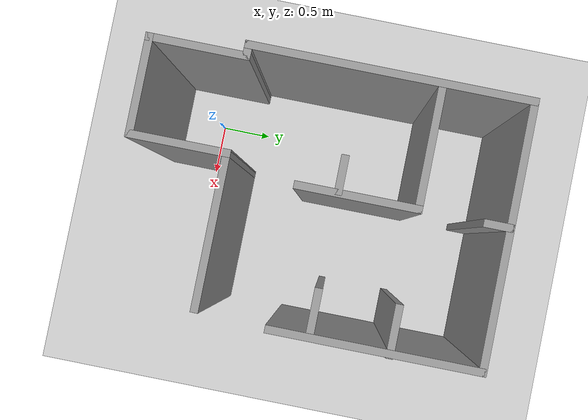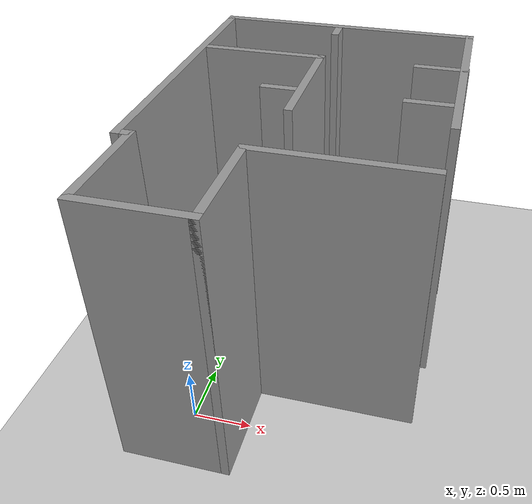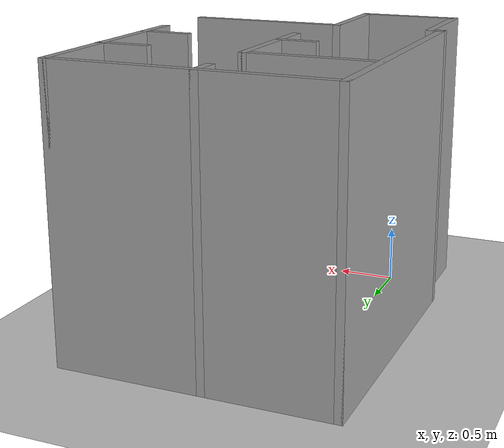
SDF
<sdf version="1.4">
  <world name="default">

    <scene>
      <ambient>0.4 0.4 0.4 1</ambient>
      <background>0.7 0.7 0.7 1</background>
      <shadows>true</shadows>
    </scene>

    <!-- A global light source -->
    <include>
      <uri>model://sun</uri>
    </include>

    <!-- A ground plane -->
    <include>
      <uri>model://ground_plane</uri>
    </include>

    <!-- The enclosed maze -->
    <include>
      <uri>model://Enclosed</uri>
    </include>

    <physics type="ode">
      <real_time_update_rate>1000.0</real_time_update_rate>
      <max_step_size>0.001</max_step_size>
      <real_time_factor>1</real_time_factor>
      <ode>
        <solver>
          <type>quick</type>
          <iters>150</iters>
          <precon_iters>0</precon_iters>
          <sor>1.400000</sor>
          <use_dynamic_moi_rescaling>1</use_dynamic_moi_rescaling>
        </solver>
        <constraints>
          <cfm>0.00001</cfm>
          <erp>0.2</erp>
          <contact_max_correcting_vel>2000.000000</contact_max_correcting_vel>
          <contact_surface_layer>0.01000</contact_surface_layer>
        </constraints>
      </ode>
    </physics>
  </world>

</sdf>

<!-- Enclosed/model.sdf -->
<sdf version='1.6'>
  <model name='Enclosed'>
    <pose frame=''>0.6785 1.225 0 0 -0 0</pose>
    <link name='Wall_0'>
      <collision name='Wall_0_Collision'>
        <geometry>
          <box>
            <size>2.57 0.07 2.5</size>
          </box>
        </geometry>
        <pose frame=''>0 0 1.25 0 -0 0</pose>
      </collision>
      <visual name='Wall_0_Visual'>
        <pose frame=''>0 0 1.25 0 -0 0</pose>
        <geometry>
          <box>
            <size>2.57 0.07 2.5</size>
          </box>
        </geometry>
        <material>
          <script>
            <uri>file://media/materials/scripts/gazebo.material</uri>
            <name>Gazebo/Grey</name>
          </script>
          <ambient>1 1 1 1</ambient>
        </material>
        <meta>
          <layer>0</layer>
        </meta>
      </visual>
      <pose frame=''>-1.1785 0.425 0 0 -0 1.5708</pose>
    </link>
    <link name='Wall_11'>
      <collision name='Wall_11_Collision'>
        <geometry>
          <box>
            <size>2.42 0.07 2.5</size>
          </box>
        </geometry>
        <pose frame=''>0 0 1.25 0 -0 0</pose>
      </collision>
      <visual name='Wall_11_Visual'>
        <pose frame=''>0 0 1.25 0 -0 0</pose>
        <geometry>
          <box>
            <size>2.42 0.07 2.5</size>
          </box>
        </geometry>
        <material>
          <script>
            <uri>file://media/materials/scripts/gazebo.material</uri>
            <name>Gazebo/Grey</name>
          </script>
          <ambient>1 1 1 1</ambient>
        </material>
        <meta>
          <layer>0</layer>
        </meta>
      </visual>
      <pose frame=''>-0.0035 1.675 0 0 -0 0</pose>
    </link>
    <link name='Wall_12'>
      <collision name='Wall_12_Collision'>
        <geometry>
          <box>
            <size>1.92 0.07 2.5</size>
          </box>
        </geometry>
        <pose frame=''>0 0 1.25 0 -0 0</pose>
      </collision>
      <visual name='Wall_12_Visual'>
        <pose frame=''>0 0 1.25 0 -0 0</pose>
        <geometry>
          <box>
            <size>1.92 0.07 2.5</size>
          </box>
        </geometry>
        <material>
          <script>
            <uri>file://media/materials/scripts/gazebo.material</uri>
            <name>Gazebo/Grey</name>
          </script>
          <ambient>1 1 1 1</ambient>
        </material>
        <meta>
          <layer>0</layer>
        </meta>
      </visual>
      <pose frame=''>1.1715 0.75 0 0 -0 -1.5708</pose>
    </link>
    <link name='Wall_14'>
      <collision name='Wall_14_Collision'>
        <geometry>
          <box>
            <size>1.159 0.07 2.5</size>
          </box>
        </geometry>
        <pose frame=''>0 0 1.25 0 -0 0</pose>
      </collision>
      <visual name='Wall_14_Visual'>
        <pose frame=''>0 0 1.25 0 -0 0</pose>
        <geometry>
          <box>
            <size>1.159 0.07 2.5</size>
          </box>
        </geometry>
        <material>
          <script>
            <uri>file://media/materials/scripts/gazebo.material</uri>
            <name>Gazebo/Grey</name>
          </script>
          <ambient>1 1 1 1</ambient>
        </material>
        <meta>
          <layer>0</layer>
        </meta>
      </visual>
      <pose frame=''>-0.623 0.875 0 0 -0 0</pose>
    </link>
    <link name='Wall_15'>
      <collision name='Wall_15_Collision'>
        <geometry>
          <box>
            <size>1.12 0.07 2.5</size>
          </box>
        </geometry>
        <pose frame=''>0 0 1.25 0 -0 0</pose>
      </collision>
      <visual name='Wall_15_Visual'>
        <pose frame=''>0 0 1.25 0 -0 0</pose>
        <geometry>
          <box>
            <size>1.12 0.07 2.5</size>
          </box>
        </geometry>
        <material>
          <script>
            <uri>file://media/materials/scripts/gazebo.material</uri>
            <name>Gazebo/Grey</name>
          </script>
          <ambient>1 1 1 1</ambient>
        </material>
        <meta>
          <layer>0</layer>
        </meta>
      </visual>
      <pose frame=''>-0.0785 0.35 0 0 -0 -1.5708</pose>
    </link>
    <link name='Wall_22'>
      <collision name='Wall_22_Collision'>
        <geometry>
          <box>
            <size>0.47 0.07 2.5</size>
          </box>
        </geometry>
        <pose frame=''>0 0 1.25 0 -0 0</pose>
      </collision>
      <visual name='Wall_22_Visual'>
        <pose frame=''>0 0 1.25 0 -0 0</pose>
        <geometry>
          <box>
            <size>0.47 0.07 2.5</size>
          </box>
        </geometry>
        <material>
          <script>
            <uri>file://media/materials/scripts/gazebo.material</uri>
            <name>Gazebo/Grey</name>
          </script>
          <ambient>1 1 1 1</ambient>
        </material>
        <meta>
          <layer>0</layer>
        </meta>
      </visual>
      <pose frame=''>0.9785 0.875 0 0 -0 3.14159</pose>
    </link>
    <link name='Wall_29'>
      <collision name='Wall_29_Collision'>
        <geometry>
          <box>
            <size>0.351 0.07 2.5</size>
          </box>
        </geometry>
        <pose frame=''>0 0 1.25 0 -0 0</pose>
      </collision>
      <visual name='Wall_29_Visual'>
        <pose frame=''>0 0 1.25 0 -0 0</pose>
        <geometry>
          <box>
            <size>0.351 0.07 2.5</size>
          </box>
        </geometry>
        <material>
          <script>
            <uri>file://media/materials/scripts/gazebo.material</uri>
            <name>Gazebo/Grey</name>
          </script>
          <ambient>1 1 1 1</ambient>
        </material>
        <meta>
          <layer>0</layer>
        </meta>
      </visual>
      <pose frame=''>-0.238 0.175 0 0 -0 3.14159</pose>
    </link>
    <link name='Wall_3'>
      <collision name='Wall_3_Collision'>
        <geometry>
          <box>
            <size>0.17 0.07 2.5</size>
          </box>
        </geometry>
        <pose frame=''>0 0 1.25 0 -0 0</pose>
      </collision>
      <visual name='Wall_3_Visual'>
        <pose frame=''>0 0 1.25 0 -0 0</pose>
        <geometry>
          <box>
            <size>0.17 0.07 2.5</size>
          </box>
        </geometry>
        <material>
          <script>
            <uri>file://media/materials/scripts/gazebo.material</uri>
            <name>Gazebo/Grey</name>
          </script>
          <ambient>1 1 1 1</ambient>
        </material>
        <meta>
          <layer>0</layer>
        </meta>
      </visual>
      <pose frame=''>-1.1285 -0.825 0 0 -0 3.14159</pose>
    </link>
    <link name='Wall_31'>
      <collision name='Wall_31_Collision'>
        <geometry>
          <box>
            <size>0.459 0.07 2.5</size>
          </box>
        </geometry>
        <pose frame=''>0 0 1.25 0 -0 0</pose>
      </collision>
      <visual name='Wall_31_Visual'>
        <pose frame=''>0 0 1.25 0 -0 0</pose>
        <geometry>
          <box>
            <size>0.459 0.07 2.5</size>
          </box>
        </geometry>
        <material>
          <script>
            <uri>file://media/materials/scripts/gazebo.material</uri>
            <name>Gazebo/Grey</name>
          </script>
          <ambient>1 1 1 1</ambient>
        </material>
        <meta>
          <layer>0</layer>
        </meta>
      </visual>
      <pose frame=''>0.973 0.175 0 0 -0 3.14159</pose>
    </link>
    <link name='Wall_33'>
      <collision name='Wall_33_Collision'>
        <geometry>
          <box>
            <size>0.27 0.07 2.5</size>
          </box>
        </geometry>
        <pose frame=''>0 0 1.25 0 -0 0</pose>
      </collision>
      <visual name='Wall_33_Visual'>
        <pose frame=''>0 0 1.25 0 -0 0</pose>
        <geometry>
          <box>
            <size>0.27 0.07 2.5</size>
          </box>
        </geometry>
        <material>
          <script>
            <uri>file://media/materials/scripts/gazebo.material</uri>
            <name>Gazebo/Grey</name>
          </script>
          <ambient>1 1 1 1</ambient>
        </material>
        <meta>
          <layer>0</layer>
        </meta>
      </visual>
      <pose frame=''>-0.0745 1.575 0 0 -0 -1.5708</pose>
    </link>
    <link name='Wall_5'>
      <collision name='Wall_5_Collision'>
        <geometry>
          <box>
            <size>0.92 0.07 2.5</size>
          </box>
        </geometry>
        <pose frame=''>0 0 1.25 0 -0 0</pose>
      </collision>
      <visual name='Wall_5_Visual'>
        <pose frame=''>0 0 1.25 0 -0 0</pose>
        <geometry>
          <box>
            <size>0.92 0.07 2.5</size>
          </box>
        </geometry>
        <material>
          <script>
            <uri>file://media/materials/scripts/gazebo.material</uri>
            <name>Gazebo/Grey</name>
          </script>
          <ambient>1 1 1 1</ambient>
        </material>
        <meta>
          <layer>0</layer>
        </meta>
      </visual>
      <pose frame=''>-1.0785 -1.25 0 0 -0 -1.5708</pose>
    </link>
    <link name='Wall_6'>
      <collision name='Wall_6_Collision'>
        <geometry>
          <box>
            <size>0.92 0.07 2.5</size>
          </box>
        </geometry>
        <pose frame=''>0 0 1.25 0 -0 0</pose>
      </collision>
      <visual name='Wall_6_Visual'>
        <pose frame=''>0 0 1.25 0 -0 0</pose>
        <geometry>
          <box>
            <size>0.92 0.07 2.5</size>
          </box>
        </geometry>
        <material>
          <script>
            <uri>file://media/materials/scripts/gazebo.material</uri>
            <name>Gazebo/Grey</name>
          </script>
          <ambient>1 1 1 1</ambient>
        </material>
        <meta>
          <layer>0</layer>
        </meta>
      </visual>
      <pose frame=''>-0.6535 -1.675 0 0 -0 0</pose>
    </link>
    <link name='Wall_7'>
      <collision name='Wall_7_Collision'>
        <geometry>
          <box>
            <size>0.92 0.07 2.5</size>
          </box>
        </geometry>
        <pose frame=''>0 0 1.25 0 -0 0</pose>
      </collision>
      <visual name='Wall_7_Visual'>
        <pose frame=''>0 0 1.25 0 -0 0</pose>
        <geometry>
          <box>
            <size>0.92 0.07 2.5</size>
          </box>
        </geometry>
        <material>
          <script>
            <uri>file://media/materials/scripts/gazebo.material</uri>
            <name>Gazebo/Grey</name>
          </script>
          <ambient>1 1 1 1</ambient>
        </material>
        <meta>
          <layer>0</layer>
        </meta>
      </visual>
      <pose frame=''>-0.2285 -1.25 0 0 -0 1.5708</pose>
    </link>
    <link name='Wall_9'>
      <collision name='Wall_9_Collision'>
        <geometry>
          <box>
            <size>1.42 0.07 2.5</size>
          </box>
        </geometry>
        <pose frame=''>0 0 1.25 0 -0 0</pose>
      </collision>
      <visual name='Wall_9_Visual'>
        <pose frame=''>0 0 1.25 0 -0 0</pose>
        <geometry>
          <box>
            <size>1.42 0.07 2.5</size>
          </box>
        </geometry>
        <material>
          <script>
            <uri>file://media/materials/scripts/gazebo.material</uri>
            <name>Gazebo/Grey</name>
          </script>
          <ambient>1 1 1 1</ambient>
        </material>
        <meta>
          <layer>0</layer>
        </meta>
      </visual>
      <pose frame=''>0.4465 -0.825 0 0 -0 0</pose>
    </link>
    <static>1</static>
  </model>
</sdf>
